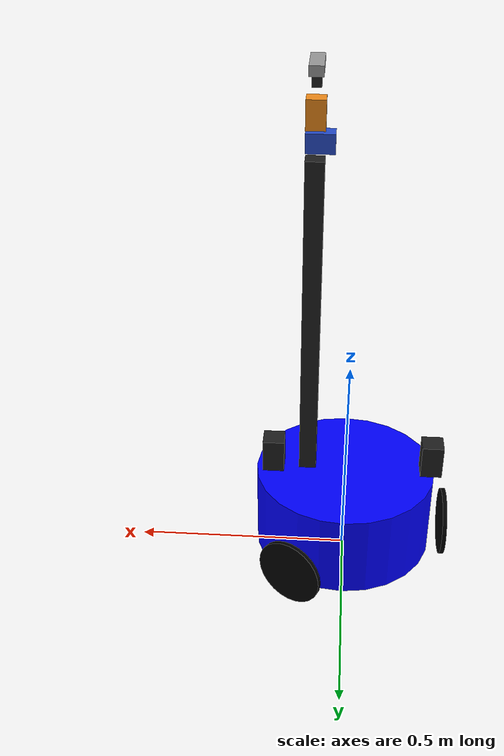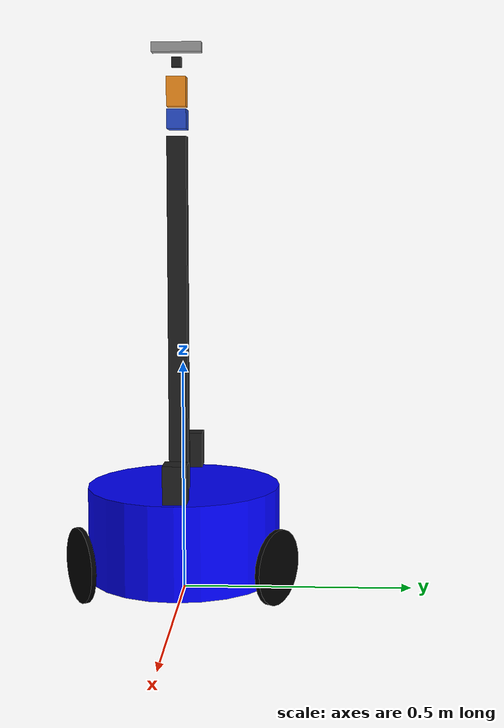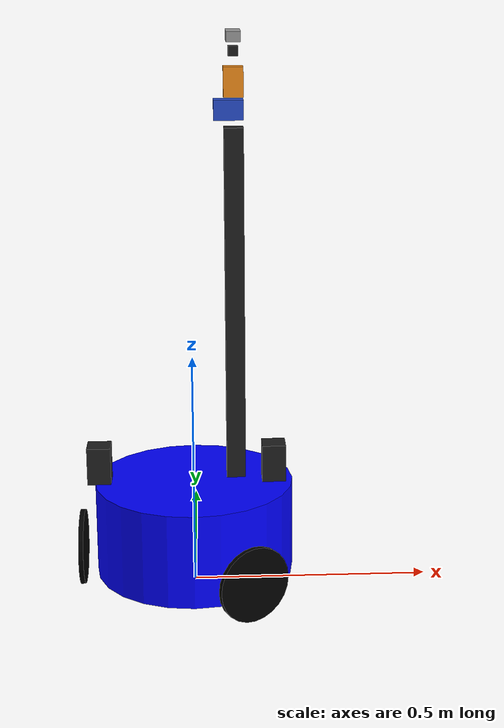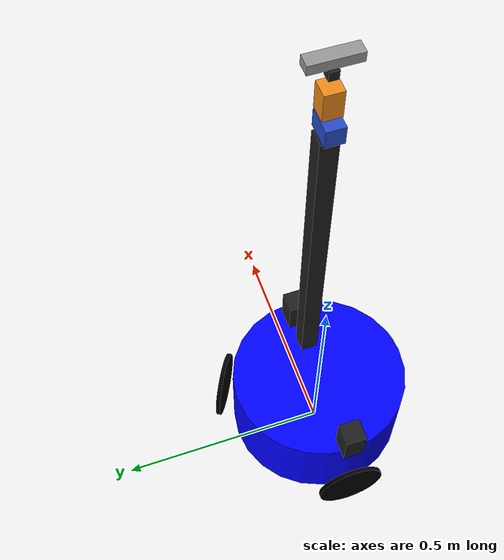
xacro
<?xml version="1.0"?>
<robot name="vujicic" xmlns:xacro="http://www.ros.org/wiki/xacro">
  <xacro:include filename="$(find vujicic_description)/urdf/macros.xacro"/>
  <xacro:include filename="$(find vujicic_description)/urdf/materials.xacro"/>
  <xacro:include filename="$(find vujicic_description)/urdf/vujicic_base_omni.xacro"/>
  <xacro:include filename="$(find vujicic_description)/urdf/vujicic_head.xacro"/>

  <joint name="spine_head_connect" type="fixed">
    <origin xyz="0 0 0.75" rpy="0 0 0"/>
    <parent link="base_torso_support"/>
    <child link="head_link1"/>
  </joint>

</robot>

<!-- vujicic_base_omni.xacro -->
<robot name="vujicic" xmlns:xacro="http://www.ros.org/wiki/xacro">
  <xacro:property name="base_radius" value="0.21"/>
  <xacro:property name="base_height" value="0.2"/>
  <xacro:property name="base_mass"   value="20.0"/>
  <xacro:property name="wheel_radius" value="0.08"/>
  <xacro:property name="wheel_width"  value="0.01"/>
  <xacro:property name="wheel_mass"   value="0.5"/>
  <xacro:property name="PI" value="3.14159265358979323846"/>

  <xacro:include filename="$(find vujicic_description)/urdf/macros.xacro"/>
  <xacro:include filename="$(find vujicic_description)/urdf/vujicic_base_omni.gazebo"/>

  <!-- MAIN BASE LINK -->
  <link name="base_link"/>
  <link name="base_center">
    <inertial>
      <origin xyz="0 0 0"/>
      <mass value="${base_mass}"/>
      <xacro:cylinder_inertia m="${base_mass}" r="${base_radius}" h="${base_height}"/>
    </inertial>
    <visual>
      <geometry><cylinder radius="${base_radius}" length="${base_height}"/></geometry>
      <material name="base_material"><color rgba="0 0 1 1"/></material>
    </visual>
    <collision>
      <geometry><cylinder radius="${base_radius}" length="${base_height}"/></geometry>
    </collision>
  </link>
  <link name="base_torso_support">
    <inertial>
      <origin xyz="0 0 0"/>
      <mass value="0.5"/>
      <xacro:box_inertia m="0.5" x="0.12" y="0.12" z="0.16"/>
    </inertial>
    <visual>
      <origin xyz="0 0 0.375" rpy="0 0 0"/>
      <geometry> <box size="0.04 0.04 0.74"/></geometry>
      <material name="black"/>
    </visual>
    <collision>
      <origin xyz="0 0 0.375" rpy="0 0 0"/>
      <geometry> <box size="0.04 0.04 0.74"/></geometry>
    </collision>
  </link>
  <joint name="base_joint" type="fixed">
    <parent link="base_link" />
    <child link="base_center" />
    <origin xyz="0 0 0.13"/>
  </joint>
  <joint name="base_torso_support_joint" type="fixed">
    <parent link="base_center" />
    <child link="base_torso_support" />
    <origin xyz="0.09 0 0.105"/>
  </joint>

  <!-- LEFT WHEEL ACTUATOR-->
  <link name="left_wheel_link">
    <inertial>
      <origin xyz="0 0 0"/>
      <mass value="${wheel_mass}"/>
      <xacro:cylinder_inertia m="${wheel_mass}" r="${wheel_radius}" h="${wheel_width}"/>
    </inertial>
    <visual>
      <geometry><cylinder radius="${wheel_radius}" length="${wheel_width}"/></geometry>
      <material name="wheel_material"><color rgba="0 0 0 1"/></material>
    </visual>
    <collision>
      <geometry><cylinder radius="${wheel_radius}" length="${wheel_width}"/></geometry>
    </collision>
  </link>
  <joint name="wheel_left_joint" type="continuous">
    <parent link="base_center" />
    <child link="left_wheel_link" />
    <axis xyz="0 0 1"/>
    <origin xyz="${(base_radius+0.03)*cos( PI/3)} ${(base_radius+0.03)*sin( PI/3)} -0.05" rpy="${PI/2} 0 ${ PI/3+PI/2}"/>
    <limit velocity="30.0" effort="5.0"/>
    <dynamics damping="0.5" friction="0.01"/>
  </joint>

  <!-- RIGHT WHEEL ACTUATOR-->
  <link name="right_wheel_link">
    <inertial>
      <origin xyz="0 0 0"/>
      <mass value="${wheel_mass}"/>
      <xacro:cylinder_inertia m="${wheel_mass}" r="${wheel_radius}" h="${wheel_width}"/>
    </inertial>
    <visual>
      <geometry><cylinder radius="${wheel_radius}" length="${wheel_width}"/></geometry>
      <material name="wheel_material"><color rgba="0 0 0 1"/></material>
    </visual>
    <collision>
      <geometry><cylinder radius="${wheel_radius}" length="${wheel_width}"/></geometry>
    </collision>
  </link>
  <joint name="wheel_right_joint" type="continuous">
    <parent link="base_center" />
    <child link="right_wheel_link" />
    <axis xyz="0 0 1"/>
    <origin xyz="${(base_radius+0.03)*cos(-PI/3)} ${(base_radius+0.03)*sin(-PI/3)} -0.05" rpy="${PI/2} 0 ${-PI/3+PI/2}"/>
    <limit velocity="30.0" effort="5.0"/>
    <dynamics damping="0.5" friction="0.01"/>
  </joint>

  <!-- BACK WHEEL ACTUATOR-->
  <link name="back_wheel_link">
    <inertial>
      <origin xyz="0 0 0"/>
      <mass value="${wheel_mass}"/>
      <xacro:cylinder_inertia m="${wheel_mass}" r="${wheel_radius}" h="${wheel_width}"/>
    </inertial>
    <visual>
      <geometry><cylinder radius="${wheel_radius}" length="${wheel_width}"/></geometry>
      <material name="wheel_material"><color rgba="0 0 0 1"/></material>
    </visual>
    <collision>
      <geometry><cylinder radius="${wheel_radius}" length="${wheel_width}"/></geometry>
    </collision>
  </link>
  <joint name="wheel_back_joint" type="continuous">
    <parent link="base_center" />
    <child link="back_wheel_link" />
    <axis xyz="0 0 1"/>
    <origin xyz="${(base_radius+0.03)*cos(PI)} ${(base_radius+0.03)*sin(PI)} -0.05" rpy="${PI/2} 0 ${PI+PI/2}"/>
    <limit velocity="30.0" effort="5.0"/>
    <dynamics damping="0.5" friction="0.01"/>
  </joint>

  <!-- LASER LINK AND JOINTS-->
  <link name="laser_link">
    <visual>
      <origin xyz="0 0 0" rpy="0 0 0"/>
      <geometry> <box size="0.05 0.05 0.08"/></geometry>
      <material name="black"/>
    </visual>
    <collision>
      <origin xyz="0 0 0" rpy="0 0 0"/>
      <geometry> <box size="0.05 0.05 0.08"/></geometry>
    </collision>
    <inertial>
      <origin xyz="0 0 0" rpy="0 0 0"/>
      <mass value="0.1"/>
      <xacro:box_inertia m="${0.1}" x="${0.05}" y="${0.05}" z="${0.08}"/>
    </inertial>
  </link>
  <link name="laser_link_rear">
    <visual>
      <origin xyz="0 0 0" rpy="0 0 0"/>
      <geometry> <box size="0.05 0.05 0.08"/></geometry>
      <material name="black"/>
    </visual>
    <collision>
      <origin xyz="0 0 0" rpy="0 0 0"/>
      <geometry> <box size="0.05 0.05 0.08"/></geometry>
    </collision>
    <inertial>
      <origin xyz="0 0 0" rpy="0 0 0"/>
      <mass value="0.1"/>
      <xacro:box_inertia m="${0.1}" x="${0.05}" y="${0.05}" z="${0.08}"/>
    </inertial>
  </link>
  <joint name="laser_connect" type="fixed">
    <origin xyz="0.17 0 0.14" />
    <parent link="base_center"/>
    <child link="laser_link"/>
  </joint>
  <joint name="rear_laser_connect" type="fixed">
    <origin xyz="-0.2 0 0.14" rpy="0 0 ${PI}"/>
    <parent link="base_center"/>
    <child link="laser_link_rear"/>
  </joint>
</robot>

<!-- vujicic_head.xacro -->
<robot name="vujicic_head" xmlns:xacro="http://www.ros.org/wiki/xacro">
  <xacro:include filename="$(find vujicic_description)/urdf/vujicic_head.gazebo"/>

  <!--HEAD LINKS AND JOINTS-->
  <link name="head_link1">
    <visual>
      <origin xyz= "-0.01 0 0.03" rpy="0 0 0"/>
      <geometry><box size="0.06 0.04 0.04"/></geometry>
      <material name="blue"/>
    </visual>
    <collision>
      <origin xyz= "-0.01 0 0.03" rpy="0 0 0"/>
      <geometry><box size="0.06 0.04 0.04"/></geometry>
    </collision>
    <inertial>
      <origin xyz="0.0 0 0.0" rpy = "0 0 0"/>
      <mass value = "0.15" />
      <inertia ixx = "0.00052" iyy = "0.00052" izz = "0.00004" ixy = "0" ixz = "0" iyz = "0" />
    </inertial>
  </link>

  <link name="head_link2">
    <visual>
      <origin xyz= "0.0 0 0.035" rpy="0 0 0"/>
      <geometry>
        <box size="0.04 0.04 0.06"/>
      </geometry>
      <material name="orange"/>
    </visual>
    <collision>
      <origin xyz= "0.0 0 0.035" rpy="0 0 0"/>
      <geometry>
        <box size = "0.04 0.04 0.06"/>
      </geometry>
    </collision>
    <inertial>
      <origin xyz="0.0 0 0.0" rpy = "0 0 0"/>
      <mass value = "0.15" />
      <inertia ixx = "0.00003125" iyy = "0.00003125" izz = "0.00003125" ixy = "0" ixz = "0" iyz = "0" />
    </inertial>
  </link>

  <joint name="head_pan" type="revolute">
    <origin xyz="0.0 0 0.05" rpy="0 0 0" />
    <parent link="head_link1"/>
    <child link="head_link2"/>
    <axis xyz="0 0 1" />
    <dynamics damping ="0.1" />
    <limit effort="6.0" velocity="3.0" lower="-1.57" upper="1.57"/>
  </joint>

  <link name="neck_link">
    <visual>
      <origin xyz="0 0 0.035" rpy="0 0 0"/>
      <geometry>
        <box size="0.02 0.02 0.02"/>
      </geometry>
      <material name="black"/>
    </visual>
    <collision>
      <origin xyz= "0 0 0.035" rpy="0 0 0"/>
      <geometry>
        <box size="0.02 0.02 0.02"/>
      </geometry>
    </collision>
    <inertial>
      <origin xyz="0.0 0 0.0" rpy = "0 0 0"/>
      <mass value = "0.15" />
      <inertia ixx = "0.00006205" iyy = "0.000555" izz = "0.0005776" ixy = "0" ixz = "0" iyz = "0" />
    </inertial>
  </link>

  <joint name="head_tilt" type="revolute">
    <origin xyz="0.0 0 0.06" rpy="0 0 0"/>
    <parent link="head_link2"/>
    <child link="neck_link"/>
    <axis xyz="0 -1 0" />
    <dynamics damping ="0.1" />
    <limit effort="6.0" velocity="3.0" lower="-1.2" upper="1.0"/>
  </joint>

  <link name="camera_link">
    <visual>
      <origin xyz="0 0 0" rpy="0 0 0"/>
      <geometry>
        <box size=" 0.029 0.103 0.02"/>
      </geometry>
      <material name="gray"/>
    </visual>
    <collision>
      <origin xyz= "0 0 0" rpy="0 0 0"/>
      <geometry>
        <box size=" 0.029 0.103 0.02"/>
      </geometry>
    </collision>
    <inertial>
      <origin xyz="0.0 0 0.0" rpy = "0 0 0"/>
      <mass value = "0.1" />
      <inertia ixx = "0.00006205" iyy = "0.000555" izz = "0.0005776" ixy = "0" ixz = "0" iyz = "0" />
    </inertial>
  </link>

  <joint name="camera_link_connect" type="fixed">
    <origin xyz="0 0 0.065" rpy="0 0 0"/>
    <parent link="neck_link"/>
    <child link="camera_link"/>
  </joint>

</robot>
